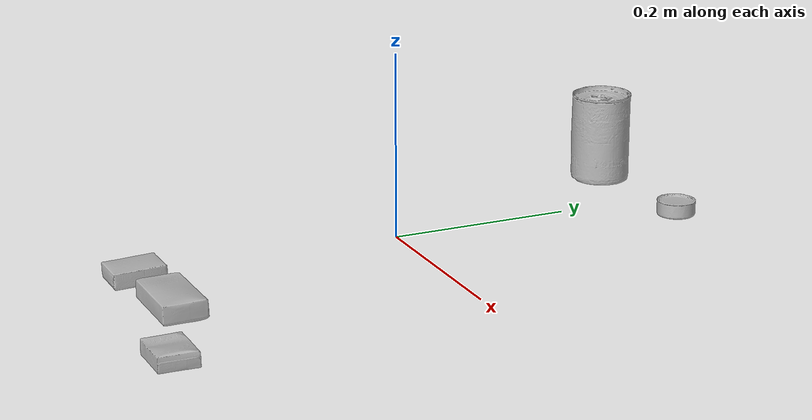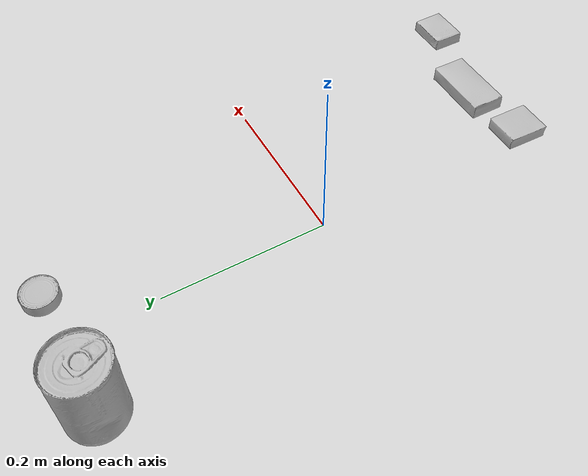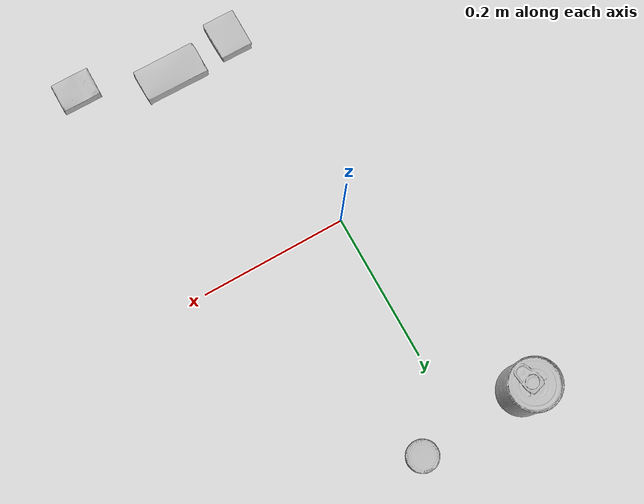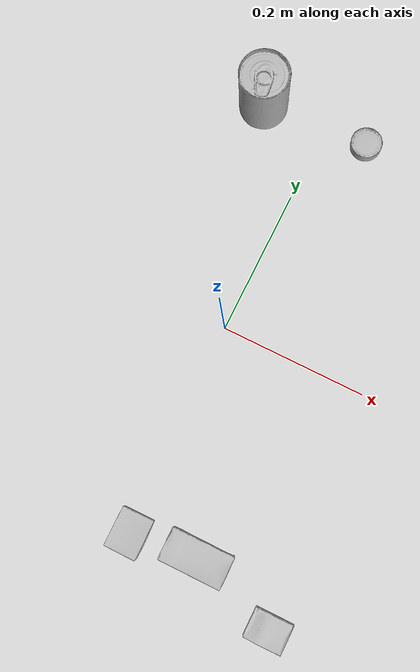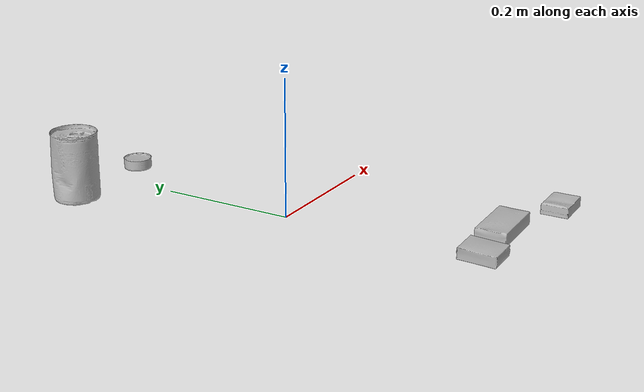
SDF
<?xml version="1.0" ?>
<sdf version="1.4">
  <world name="default">
    <light name="light1" type="point">
      <pose>0 0 1 0 0 0</pose>
      <diffuse>3 3 3 1</diffuse>
      <specular>3 3 3 1</specular>
    </light>
    <light name="light2" type="point">
      <pose>0 0.5 2 0 0 0</pose>
      <diffuse>1 1 1 1</diffuse>
      <specular>1 1 1 1</specular>
    </light>
    <light name="light3" type="point">
      <pose>0 0.5 2 0 0 0</pose>
      <diffuse>3 3 3 1</diffuse>
      <specular>3 3 3 1</specular>
    </light>
    <scene>
      <ambient>0.7 0.7 0.7</ambient>
    </scene>
    <model name="box1">
      <link name="link_box1">
        <collision name="default">
          <geometry>
            <mesh>
              <uri>model://cracker_box/collision_meshes/collision.obj</uri>
              <scale>0.25 0.25 0.25</scale>
            </mesh>
          </geometry>
          <surface>
            <friction>
              <ode>
                <mu>0.5</mu>
                <mu2>0.5</mu2>
              </ode>
            </friction>
          </surface>
        </collision>
        <visual name="default">
          <geometry>
            <mesh>
              <uri>model://cracker_box/visual_meshes/visual.dae</uri>
              <scale>0.25 0.25 0.25</scale>
            </mesh>
          </geometry>
        </visual>
        <inertial>
          <mass>0.029061755165457726</mass>
          <pose>0.00023660456645302474 6.358561950037256e-05 -0.0004257383698131889 -0.0003162077745192934 -0.011106489600167671 0.002546795235645709</pose>
          <inertia>
            <ixx>4.620008e-06</ixx>
            <iyy>7.6285405e-06</iyy>
            <izz>1.0886628e-05</izz>
            <ixy>0</ixy>
            <ixz>0</ixz>
            <iyz>0</iyz>
          </inertia>
        </inertial>
      </link>
      <pose>0.219933420419693 -0.3198499083518982 0.009120451286435127 -0.01178896881871573 -0.00736648281743462 0.00012826056490759916</pose>
    </model>
    <model name="box2">
      <link name="link_box2">
        <collision name="default">
          <geometry>
            <mesh>
              <uri>model://sugar_box/collision_meshes/collision.obj</uri>
              <scale>0.5 0.5 0.5</scale>
            </mesh>
          </geometry>
          <surface>
            <friction>
              <ode>
                <mu>0.5</mu>
                <mu2>0.5</mu2>
              </ode>
            </friction>
          </surface>
        </collision>
        <visual name="default">
          <geometry>
            <mesh>
              <uri>model://sugar_box/visual_meshes/visual.dae</uri>
              <scale>0.5 0.5 0.5</scale>
            </mesh>
          </geometry>
        </visual>
        <inertial>
          <mass>0.08909860998392105</mass>
          <pose>0.0005171863595023751 1.924554817378521e-05 -0.00018182402709499002 -0.00040462606756407727 0.0010506635218583888 0.002615378789044619</pose>
          <inertia>
            <ixx>1.8559176e-05</ixx>
            <iyy>5.9987076e-05</iyy>
            <izz>7.181169e-05</izz>
            <ixy>0</ixy>
            <ixz>0</ixz>
            <iyz>0</iyz>
          </inertia>
        </inertial>
      </link>
      <pose>0.09952272474765778 -0.28013351559638977 0.011399303562939167 0.0007749609584497532 -0.02343316180866486 0.00023495340767120692</pose>
    </model>
    <model name="box3">
      <link name="link_box3">
        <collision name="default">
          <geometry>
            <mesh>
              <uri>model://pudding_box/collision_meshes/collision.obj</uri>
              <scale>0.5 0.5 0.5</scale>
            </mesh>
          </geometry>
          <surface>
            <friction>
              <ode>
                <mu>0.5</mu>
                <mu2>0.5</mu2>
              </ode>
            </friction>
          </surface>
        </collision>
        <visual name="default">
          <geometry>
            <mesh>
              <uri>model://pudding_box/visual_meshes/visual.dae</uri>
              <scale>0.5 0.5 0.5</scale>
            </mesh>
          </geometry>
        </visual>
        <inertial>
          <mass>0.058397307991981506</mass>
          <pose>0.00024474109522998333 0.000403394311433658 -0.0002594413817860186 0.005213099939270767 -0.006603797768571226 0.020079825168092046</pose>
          <inertia>
            <ixx>1.650379e-05</ixx>
            <iyy>1.1103868e-05</iyy>
            <izz>2.437216e-05</izz>
            <ixy>0</ixy>
            <ixz>0</ixz>
            <iyz>0</iyz>
          </inertia>
        </inertial>
      </link>
      <pose>0.009741337969899178 -0.29025208950042725 0.009862902574241161 0.02234866452964152 -0.011391655757801471 -9.439149144467594e-05</pose>
    </model>
    <model name="can1">
      <link name="link_can1">
        <collision name="default">
          <geometry>
            <mesh>
              <uri>model://tuna_fish_can/collision_meshes/collision.obj</uri>
              <scale>0.5 0.5 0.5</scale>
            </mesh>
          </geometry>
          <surface>
            <friction>
              <ode>
                <mu>0.5</mu>
                <mu2>0.5</mu2>
              </ode>
            </friction>
          </surface>
        </collision>
        <visual name="default">
          <geometry>
            <mesh>
              <uri>model://tuna_fish_can/visual_meshes/visual.dae</uri>
              <scale>0.5 0.5 0.5</scale>
            </mesh>
          </geometry>
        </visual>
        <inertial>
          <mass>0.024247437715530396</mass>
          <pose>-2.0361860151751898e-05 -7.256063781824196e-06 -0.000526902440469712 -0.0017944785229743307 0.0001716120442354053 0.2405371667019961</pose>
          <inertia>
            <ixx>3.2782896e-06</ixx>
            <iyy>3.2646258e-06</iyy>
            <izz>5.609621e-06</izz>
            <ixy>0</ixy>
            <ixz>0</ixz>
            <iyz>0</iyz>
          </inertia>
        </inertial>
      </link>
      <pose>0.05997500196099281 0.31002277135849 0.00851999782025814 -3.954118733508079e-08 -5.798938513017212e-08 -1.4896516971878344e-07</pose>
    </model>
    <model name="can2">
      <link name="link_can2">
        <collision name="default">
          <geometry>
            <mesh>
              <uri>model://tomato_soup_can/collision_meshes/collision.obj</uri>
              <scale>1.0 1.0 1.0</scale>
            </mesh>
          </geometry>
          <surface>
            <friction>
              <ode>
                <mu>0.5</mu>
                <mu2>0.5</mu2>
              </ode>
            </friction>
          </surface>
        </collision>
        <visual name="default">
          <geometry>
            <mesh>
              <uri>model://tomato_soup_can/visual_meshes/visual.dae</uri>
              <scale>1.0 1.0 1.0</scale>
            </mesh>
          </geometry>
        </visual>
        <inertial>
          <mass>0.44329848885536194</mass>
          <pose>0.0001265227037947625 0.00010805520287249237 -0.0017973989015445113 0.007020066893531886 0.00042299576578658417 -0.009903435969571123</pose>
          <inertia>
            <ixx>0.00048603912</ixx>
            <iyy>0.0004832301</iyy>
            <izz>0.00025190957</izz>
            <ixy>0</ixy>
            <ixz>0</ixz>
            <iyz>0</iyz>
          </inertia>
        </inertial>
      </link>
      <pose>-0.09005407243967056 0.3000020682811737 0.05127400904893875 -5.528401905506212e-07 -6.597001102759019e-07 -3.784778757868583e-07</pose>
    </model>
  </world>
</sdf>
